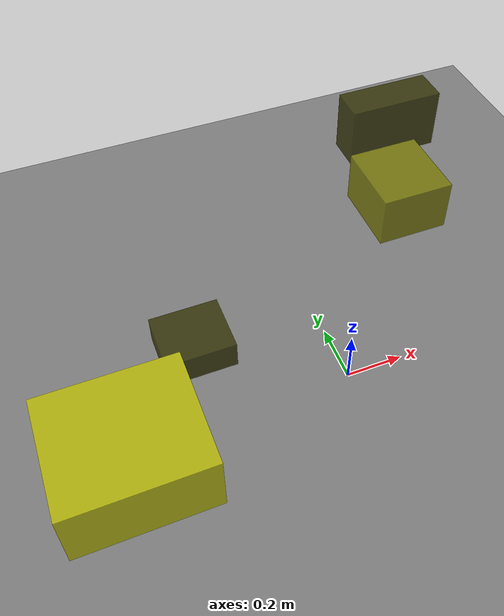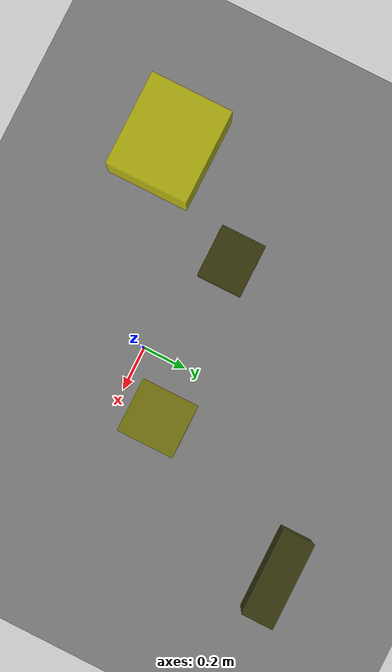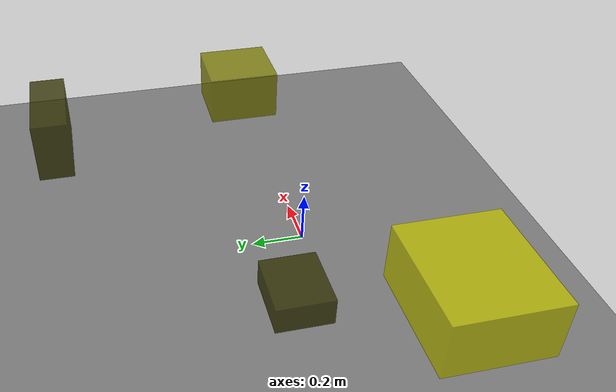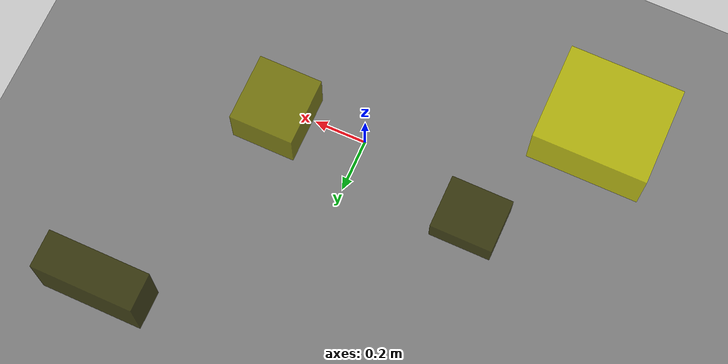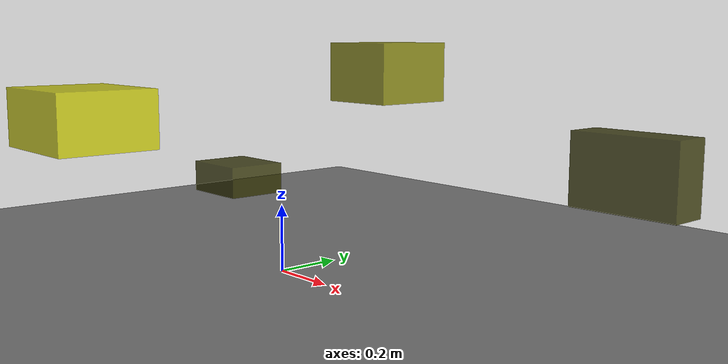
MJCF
<?xml version="1.0"?>
<mujoco model="obstacle_scene">
  <compiler angle="radian" coordinate="local"/>
  <option timestep="0.001" gravity="0 0 -9.81"/>

  <asset>
    <material name="obstacle_mat" rgba="0.8 0.8 0.0 0.8"/>
    <material name="ground_mat" rgba="0.5 0.5 0.5 1"/>
  </asset>

  <worldbody>
    <!-- Ground plane -->
    <geom name="ground" type="plane" size="3 3 0.1" material="ground_mat"/>

    <!-- Obstacles -->
    <body name="obstacle_0" pos="0.592697 0.923653 0.273429">
      <geom name="obs_0" type="box" size="0.188397 0.070256 0.124325" rgba="0.2 0.2 0.0 0.8"/>
    </body>
    <body name="obstacle_1" pos="0.227639 0.209752 0.596178">
      <geom name="obs_1" type="box" size="0.110848 0.117866 0.083190" rgba="0.5 0.5 0.0 0.8"/>
    </body>
    <body name="obstacle_2" pos="-0.781007 -0.258279 0.418919">
      <geom name="obs_2" type="box" size="0.205225 0.178663 0.102865" rgba="0.8 0.8 0.0 0.8"/>
    </body>
    <body name="obstacle_3" pos="-0.483403 0.173956 0.209824">
      <geom name="obs_3" type="box" size="0.115672 0.099903 0.051220" rgba="0.2 0.2 0.0 0.8"/>
    </body>
  </worldbody>
</mujoco>
